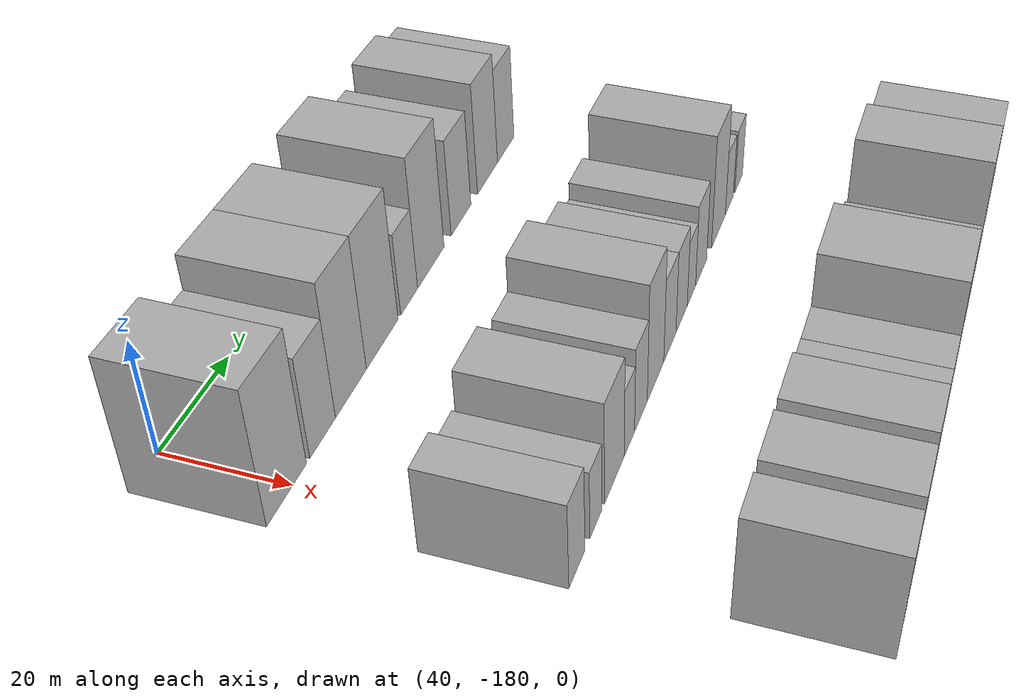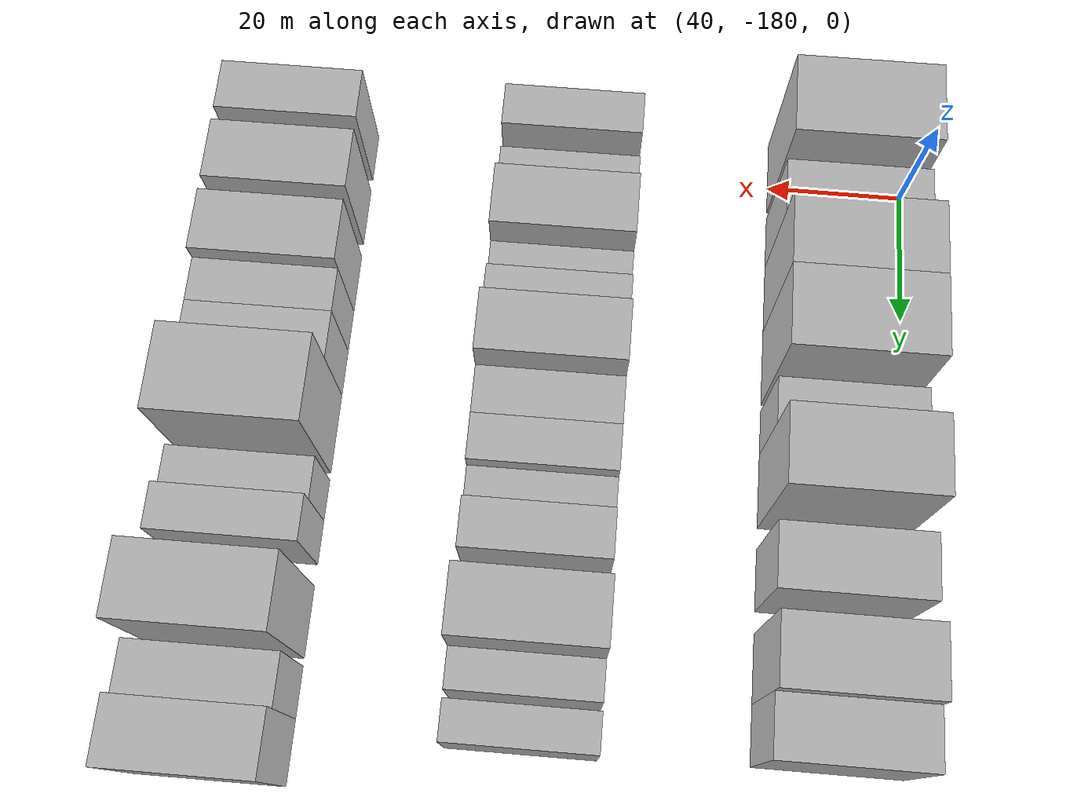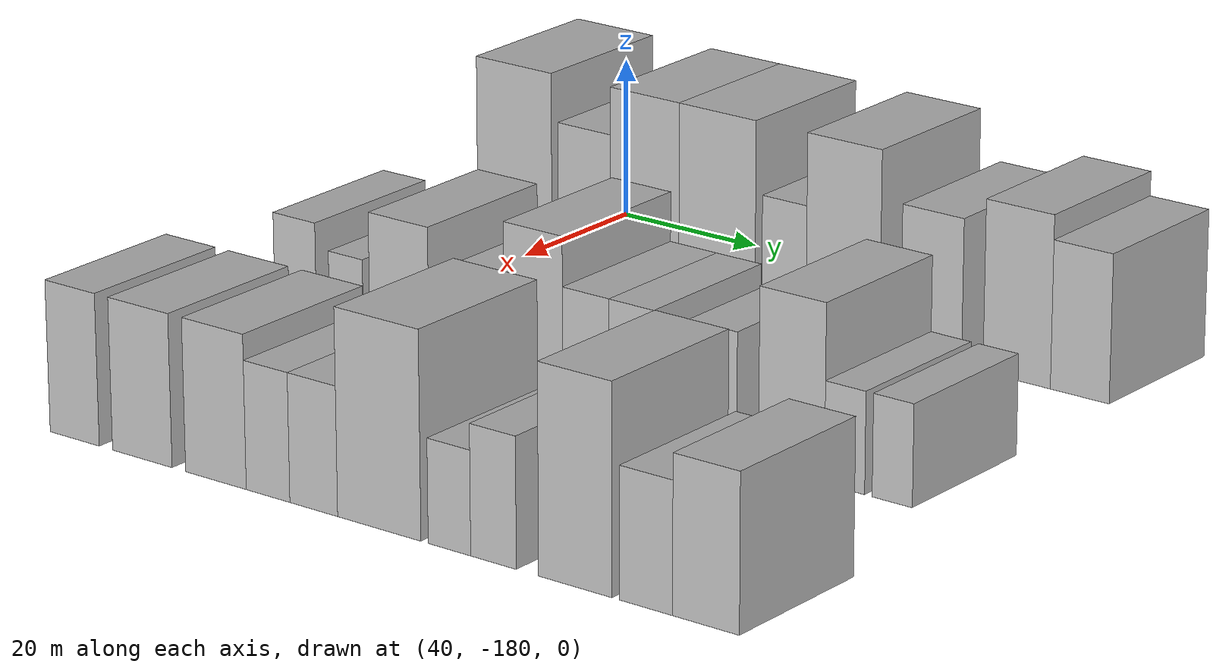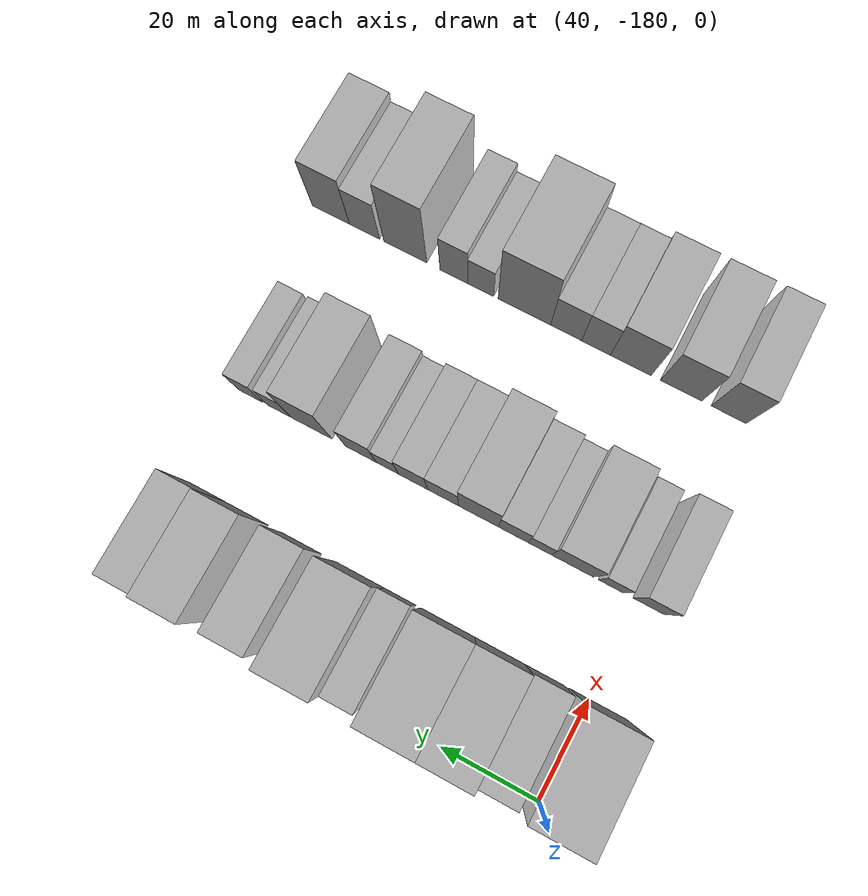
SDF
<sdf version="1.6">
 <world name="default">
  <model name="building_24">
   <static>1</static>
   <pose>50.0000 -181.7386 0 0.000000 0.000000 0.000000</pose>
   <link name="link">
    <pose>0 0 12.00 0 0 0</pose>
    <collision name="collision"><geometry><box><size>20.0000 11.6071 24.0000</size></box></geometry></collision>
    <visual name="visual">
     <cast_shadows>0</cast_shadows>
     <geometry><box><size>20.0000 11.6071 24.0000</size></box></geometry>
     <material>
      <script>
       <uri>model://HANNAS_wall/materials/scripts</uri>
       <uri>model://HANNAS_wall/materials/textures</uri>
       <name>vrc/HANNAS_wall</name>
      </script>
     </material>
    </visual>
   </link>
  </model>
  <model name="building_25">
   <static>1</static>
   <pose>50.0000 -170.9061 0 0.000000 0.000000 0.000000</pose>
   <link name="link">
    <pose>0 0 9.00 0 0 0</pose>
    <collision name="collision"><geometry><box><size>20.0000 8.0578 18.0000</size></box></geometry></collision>
    <visual name="visual">
     <cast_shadows>0</cast_shadows>
     <geometry><box><size>20.0000 8.0578 18.0000</size></box></geometry>
     <material>
      <script>
       <uri>model://HANNAS_wall/materials/scripts</uri>
       <uri>model://HANNAS_wall/materials/textures</uri>
       <name>vrc/HANNAS_wall</name>
      </script>
     </material>
    </visual>
   </link>
  </model>
  <model name="building_26">
   <static>1</static>
   <pose>50.0000 -161.7158 0 0.000000 0.000000 0.000000</pose>
   <link name="link">
    <pose>0 0 12.00 0 0 0</pose>
    <collision name="collision"><geometry><box><size>20.0000 10.3230 24.0000</size></box></geometry></collision>
    <visual name="visual">
     <cast_shadows>0</cast_shadows>
     <geometry><box><size>20.0000 10.3230 24.0000</size></box></geometry>
     <material>
      <script>
       <uri>model://HANNAS_wall/materials/scripts</uri>
       <uri>model://HANNAS_wall/materials/textures</uri>
       <name>vrc/HANNAS_wall</name>
      </script>
     </material>
    </visual>
   </link>
  </model>
  <model name="building_27">
   <static>1</static>
   <pose>50.0000 -150.8850 0 0.000000 0.000000 0.000000</pose>
   <link name="link">
    <pose>0 0 12.00 0 0 0</pose>
    <collision name="collision"><geometry><box><size>20.0000 11.3386 24.0000</size></box></geometry></collision>
    <visual name="visual">
     <cast_shadows>0</cast_shadows>
     <geometry><box><size>20.0000 11.3386 24.0000</size></box></geometry>
     <material>
      <script>
       <uri>model://HANNAS_wall/materials/scripts</uri>
       <uri>model://HANNAS_wall/materials/textures</uri>
       <name>vrc/HANNAS_wall</name>
      </script>
     </material>
    </visual>
   </link>
  </model>
  <model name="building_28">
   <static>1</static>
   <pose>50.0000 -140.9784 0 0.000000 0.000000 0.000000</pose>
   <link name="link">
    <pose>0 0 7.50 0 0 0</pose>
    <collision name="collision"><geometry><box><size>20.0000 6.4745 15.0000</size></box></geometry></collision>
    <visual name="visual">
     <cast_shadows>0</cast_shadows>
     <geometry><box><size>20.0000 6.4745 15.0000</size></box></geometry>
     <material>
      <script>
       <uri>model://HANNAS_wall/materials/scripts</uri>
       <uri>model://HANNAS_wall/materials/textures</uri>
       <name>vrc/HANNAS_wall</name>
      </script>
     </material>
    </visual>
   </link>
  </model>
  <model name="building_29">
   <static>1</static>
   <pose>50.0000 -132.4195 0 0.000000 0.000000 0.000000</pose>
   <link name="link">
    <pose>0 0 12.00 0 0 0</pose>
    <collision name="collision"><geometry><box><size>20.0000 10.6431 24.0000</size></box></geometry></collision>
    <visual name="visual">
     <cast_shadows>0</cast_shadows>
     <geometry><box><size>20.0000 10.6431 24.0000</size></box></geometry>
     <material>
      <script>
       <uri>model://HANNAS_wall/materials/scripts</uri>
       <uri>model://HANNAS_wall/materials/textures</uri>
       <name>vrc/HANNAS_wall</name>
      </script>
     </material>
    </visual>
   </link>
  </model>
  <model name="building_30">
   <static>1</static>
   <pose>50.0000 -119.7952 0 0.000000 0.000000 0.000000</pose>
   <link name="link">
    <pose>0 0 9.00 0 0 0</pose>
    <collision name="collision"><geometry><box><size>20.0000 8.6057 18.0000</size></box></geometry></collision>
    <visual name="visual">
     <cast_shadows>0</cast_shadows>
     <geometry><box><size>20.0000 8.6057 18.0000</size></box></geometry>
     <material>
      <script>
       <uri>model://HANNAS_wall/materials/scripts</uri>
       <uri>model://HANNAS_wall/materials/textures</uri>
       <name>vrc/HANNAS_wall</name>
      </script>
     </material>
    </visual>
   </link>
  </model>
  <model name="building_31">
   <static>1</static>
   <pose>50.0000 -107.8266 0 0.000000 0.000000 0.000000</pose>
   <link name="link">
    <pose>0 0 10.50 0 0 0</pose>
    <collision name="collision"><geometry><box><size>20.0000 9.3315 21.0000</size></box></geometry></collision>
    <visual name="visual">
     <cast_shadows>0</cast_shadows>
     <geometry><box><size>20.0000 9.3315 21.0000</size></box></geometry>
     <material>
      <script>
       <uri>model://HANNAS_wall/materials/scripts</uri>
       <uri>model://HANNAS_wall/materials/textures</uri>
       <name>vrc/HANNAS_wall</name>
      </script>
     </material>
    </visual>
   </link>
  </model>
  <model name="building_32">
   <static>1</static>
   <pose>50.0000 -99.1483 0 0.000000 0.000000 0.000000</pose>
   <link name="link">
    <pose>0 0 9.00 0 0 0</pose>
    <collision name="collision"><geometry><box><size>20.0000 8.0252 18.0000</size></box></geometry></collision>
    <visual name="visual">
     <cast_shadows>0</cast_shadows>
     <geometry><box><size>20.0000 8.0252 18.0000</size></box></geometry>
     <material>
      <script>
       <uri>model://HANNAS_wall/materials/scripts</uri>
       <uri>model://HANNAS_wall/materials/textures</uri>
       <name>vrc/HANNAS_wall</name>
      </script>
     </material>
    </visual>
   </link>
  </model>
  <model name="building_114">
   <static>1</static>
   <pose>90.0000 -182.3572 0 0.000000 0.000000 0.000000</pose>
   <link name="link">
    <pose>0 0 7.50 0 0 0</pose>
    <collision name="collision"><geometry><box><size>20.0000 6.4080 15.0000</size></box></geometry></collision>
    <visual name="visual">
     <cast_shadows>0</cast_shadows>
     <geometry><box><size>20.0000 6.4080 15.0000</size></box></geometry>
     <material>
      <script>
       <uri>model://HANNAS_wall/materials/scripts</uri>
       <uri>model://HANNAS_wall/materials/textures</uri>
       <name>vrc/HANNAS_wall</name>
      </script>
     </material>
    </visual>
   </link>
  </model>
  <model name="building_115">
   <static>1</static>
   <pose>90.0000 -174.5740 0 0.000000 0.000000 0.000000</pose>
   <link name="link">
    <pose>0 0 6.00 0 0 0</pose>
    <collision name="collision"><geometry><box><size>20.0000 5.1584 12.0000</size></box></geometry></collision>
    <visual name="visual">
     <cast_shadows>0</cast_shadows>
     <geometry><box><size>20.0000 5.1584 12.0000</size></box></geometry>
     <material>
      <script>
       <uri>model://HANNAS_wall/materials/scripts</uri>
       <uri>model://HANNAS_wall/materials/textures</uri>
       <name>vrc/HANNAS_wall</name>
      </script>
     </material>
    </visual>
   </link>
  </model>
  <model name="building_116">
   <static>1</static>
   <pose>90.0000 -166.5674 0 0.000000 0.000000 0.000000</pose>
   <link name="link">
    <pose>0 0 9.00 0 0 0</pose>
    <collision name="collision"><geometry><box><size>20.0000 8.8548 18.0000</size></box></geometry></collision>
    <visual name="visual">
     <cast_shadows>0</cast_shadows>
     <geometry><box><size>20.0000 8.8548 18.0000</size></box></geometry>
     <material>
      <script>
       <uri>model://HANNAS_wall/materials/scripts</uri>
       <uri>model://HANNAS_wall/materials/textures</uri>
       <name>vrc/HANNAS_wall</name>
      </script>
     </material>
    </visual>
   </link>
  </model>
  <model name="building_117">
   <static>1</static>
   <pose>90.0000 -159.6843 0 0.000000 0.000000 0.000000</pose>
   <link name="link">
    <pose>0 0 6.00 0 0 0</pose>
    <collision name="collision"><geometry><box><size>20.0000 4.9114 12.0000</size></box></geometry></collision>
    <visual name="visual">
     <cast_shadows>0</cast_shadows>
     <geometry><box><size>20.0000 4.9114 12.0000</size></box></geometry>
     <material>
      <script>
       <uri>model://HANNAS_wall/materials/scripts</uri>
       <uri>model://HANNAS_wall/materials/textures</uri>
       <name>vrc/HANNAS_wall</name>
      </script>
     </material>
    </visual>
   </link>
  </model>
  <model name="building_118">
   <static>1</static>
   <pose>90.0000 -154.1243 0 0.000000 0.000000 0.000000</pose>
   <link name="link">
    <pose>0 0 7.50 0 0 0</pose>
    <collision name="collision"><geometry><box><size>20.0000 6.2087 15.0000</size></box></geometry></collision>
    <visual name="visual">
     <cast_shadows>0</cast_shadows>
     <geometry><box><size>20.0000 6.2087 15.0000</size></box></geometry>
     <material>
      <script>
       <uri>model://HANNAS_wall/materials/scripts</uri>
       <uri>model://HANNAS_wall/materials/textures</uri>
       <name>vrc/HANNAS_wall</name>
      </script>
     </material>
    </visual>
   </link>
  </model>
  <model name="building_119">
   <static>1</static>
   <pose>90.0000 -146.7748 0 0.000000 0.000000 0.000000</pose>
   <link name="link">
    <pose>0 0 10.50 0 0 0</pose>
    <collision name="collision"><geometry><box><size>20.0000 8.4903 21.0000</size></box></geometry></collision>
    <visual name="visual">
     <cast_shadows>0</cast_shadows>
     <geometry><box><size>20.0000 8.4903 21.0000</size></box></geometry>
     <material>
      <script>
       <uri>model://HANNAS_wall/materials/scripts</uri>
       <uri>model://HANNAS_wall/materials/textures</uri>
       <name>vrc/HANNAS_wall</name>
      </script>
     </material>
    </visual>
   </link>
  </model>
  <model name="building_120">
   <static>1</static>
   <pose>90.0000 -139.2105 0 0.000000 0.000000 0.000000</pose>
   <link name="link">
    <pose>0 0 7.50 0 0 0</pose>
    <collision name="collision"><geometry><box><size>20.0000 6.6384 15.0000</size></box></geometry></collision>
    <visual name="visual">
     <cast_shadows>0</cast_shadows>
     <geometry><box><size>20.0000 6.6384 15.0000</size></box></geometry>
     <material>
      <script>
       <uri>model://HANNAS_wall/materials/scripts</uri>
       <uri>model://HANNAS_wall/materials/textures</uri>
       <name>vrc/HANNAS_wall</name>
      </script>
     </material>
    </visual>
   </link>
  </model>
  <model name="building_121">
   <static>1</static>
   <pose>90.0000 -132.7266 0 0.000000 0.000000 0.000000</pose>
   <link name="link">
    <pose>0 0 7.50 0 0 0</pose>
    <collision name="collision"><geometry><box><size>20.0000 6.3294 15.0000</size></box></geometry></collision>
    <visual name="visual">
     <cast_shadows>0</cast_shadows>
     <geometry><box><size>20.0000 6.3294 15.0000</size></box></geometry>
     <material>
      <script>
       <uri>model://HANNAS_wall/materials/scripts</uri>
       <uri>model://HANNAS_wall/materials/textures</uri>
       <name>vrc/HANNAS_wall</name>
      </script>
     </material>
    </visual>
   </link>
  </model>
  <model name="building_122">
   <static>1</static>
   <pose>90.0000 -127.1419 0 0.000000 0.000000 0.000000</pose>
   <link name="link">
    <pose>0 0 6.00 0 0 0</pose>
    <collision name="collision"><geometry><box><size>20.0000 4.8399 12.0000</size></box></geometry></collision>
    <visual name="visual">
     <cast_shadows>0</cast_shadows>
     <geometry><box><size>20.0000 4.8399 12.0000</size></box></geometry>
     <material>
      <script>
       <uri>model://HANNAS_wall/materials/scripts</uri>
       <uri>model://HANNAS_wall/materials/textures</uri>
       <name>vrc/HANNAS_wall</name>
      </script>
     </material>
    </visual>
   </link>
  </model>
  <model name="building_123">
   <static>1</static>
   <pose>90.0000 -121.3613 0 0.000000 0.000000 0.000000</pose>
   <link name="link">
    <pose>0 0 7.50 0 0 0</pose>
    <collision name="collision"><geometry><box><size>20.0000 6.7214 15.0000</size></box></geometry></collision>
    <visual name="visual">
     <cast_shadows>0</cast_shadows>
     <geometry><box><size>20.0000 6.7214 15.0000</size></box></geometry>
     <material>
      <script>
       <uri>model://HANNAS_wall/materials/scripts</uri>
       <uri>model://HANNAS_wall/materials/textures</uri>
       <name>vrc/HANNAS_wall</name>
      </script>
     </material>
    </visual>
   </link>
  </model>
  <model name="building_124">
   <static>1</static>
   <pose>90.0000 -110.5123 0 0.000000 0.000000 0.000000</pose>
   <link name="link">
    <pose>0 0 10.50 0 0 0</pose>
    <collision name="collision"><geometry><box><size>20.0000 8.9765 21.0000</size></box></geometry></collision>
    <visual name="visual">
     <cast_shadows>0</cast_shadows>
     <geometry><box><size>20.0000 8.9765 21.0000</size></box></geometry>
     <material>
      <script>
       <uri>model://HANNAS_wall/materials/scripts</uri>
       <uri>model://HANNAS_wall/materials/textures</uri>
       <name>vrc/HANNAS_wall</name>
      </script>
     </material>
    </visual>
   </link>
  </model>
  <model name="building_125">
   <static>1</static>
   <pose>90.0000 -103.3233 0 0.000000 0.000000 0.000000</pose>
   <link name="link">
    <pose>0 0 6.00 0 0 0</pose>
    <collision name="collision"><geometry><box><size>20.0000 5.4015 12.0000</size></box></geometry></collision>
    <visual name="visual">
     <cast_shadows>0</cast_shadows>
     <geometry><box><size>20.0000 5.4015 12.0000</size></box></geometry>
     <material>
      <script>
       <uri>model://HANNAS_wall/materials/scripts</uri>
       <uri>model://HANNAS_wall/materials/textures</uri>
       <name>vrc/HANNAS_wall</name>
      </script>
     </material>
    </visual>
   </link>
  </model>
  <model name="building_126">
   <static>1</static>
   <pose>90.0000 -96.9538 0 0.000000 0.000000 0.000000</pose>
   <link name="link">
    <pose>0 0 6.00 0 0 0</pose>
    <collision name="collision"><geometry><box><size>20.0000 5.3375 12.0000</size></box></geometry></collision>
    <visual name="visual">
     <cast_shadows>0</cast_shadows>
     <geometry><box><size>20.0000 5.3375 12.0000</size></box></geometry>
     <material>
      <script>
       <uri>model://HANNAS_wall/materials/scripts</uri>
       <uri>model://HANNAS_wall/materials/textures</uri>
       <name>vrc/HANNAS_wall</name>
      </script>
     </material>
    </visual>
   </link>
  </model>
  <model name="building_205">
   <static>1</static>
   <pose>130.0000 -180.3474 0 0.000000 0.000000 0.000000</pose>
   <link name="link">
    <pose>0 0 9.00 0 0 0</pose>
    <collision name="collision"><geometry><box><size>20.0000 7.4548 18.0000</size></box></geometry></collision>
    <visual name="visual">
     <cast_shadows>0</cast_shadows>
     <geometry><box><size>20.0000 7.4548 18.0000</size></box></geometry>
     <material>
      <script>
       <uri>model://HANNAS_wall/materials/scripts</uri>
       <uri>model://HANNAS_wall/materials/textures</uri>
       <name>vrc/HANNAS_wall</name>
      </script>
     </material>
    </visual>
   </link>
  </model>
  <model name="building_206">
   <static>1</static>
   <pose>130.0000 -170.1773 0 0.000000 0.000000 0.000000</pose>
   <link name="link">
    <pose>0 0 9.00 0 0 0</pose>
    <collision name="collision"><geometry><box><size>20.0000 8.8854 18.0000</size></box></geometry></collision>
    <visual name="visual">
     <cast_shadows>0</cast_shadows>
     <geometry><box><size>20.0000 8.8854 18.0000</size></box></geometry>
     <material>
      <script>
       <uri>model://HANNAS_wall/materials/scripts</uri>
       <uri>model://HANNAS_wall/materials/textures</uri>
       <name>vrc/HANNAS_wall</name>
      </script>
     </material>
    </visual>
   </link>
  </model>
  <model name="building_207">
   <static>1</static>
   <pose>130.0000 -159.2992 0 0.000000 0.000000 0.000000</pose>
   <link name="link">
    <pose>0 0 9.00 0 0 0</pose>
    <collision name="collision"><geometry><box><size>20.0000 8.8709 18.0000</size></box></geometry></collision>
    <visual name="visual">
     <cast_shadows>0</cast_shadows>
     <geometry><box><size>20.0000 8.8709 18.0000</size></box></geometry>
     <material>
      <script>
       <uri>model://HANNAS_wall/materials/scripts</uri>
       <uri>model://HANNAS_wall/materials/textures</uri>
       <name>vrc/HANNAS_wall</name>
      </script>
     </material>
    </visual>
   </link>
  </model>
  <model name="building_208">
   <static>1</static>
   <pose>130.0000 -151.7180 0 0.000000 0.000000 0.000000</pose>
   <link name="link">
    <pose>0 0 7.50 0 0 0</pose>
    <collision name="collision"><geometry><box><size>20.0000 6.2914 15.0000</size></box></geometry></collision>
    <visual name="visual">
     <cast_shadows>0</cast_shadows>
     <geometry><box><size>20.0000 6.2914 15.0000</size></box></geometry>
     <material>
      <script>
       <uri>model://HANNAS_wall/materials/scripts</uri>
       <uri>model://HANNAS_wall/materials/textures</uri>
       <name>vrc/HANNAS_wall</name>
      </script>
     </material>
    </visual>
   </link>
  </model>
  <model name="building_209">
   <static>1</static>
   <pose>130.0000 -145.1689 0 0.000000 0.000000 0.000000</pose>
   <link name="link">
    <pose>0 0 7.50 0 0 0</pose>
    <collision name="collision"><geometry><box><size>20.0000 6.8070 15.0000</size></box></geometry></collision>
    <visual name="visual">
     <cast_shadows>0</cast_shadows>
     <geometry><box><size>20.0000 6.8070 15.0000</size></box></geometry>
     <material>
      <script>
       <uri>model://HANNAS_wall/materials/scripts</uri>
       <uri>model://HANNAS_wall/materials/textures</uri>
       <name>vrc/HANNAS_wall</name>
      </script>
     </material>
    </visual>
   </link>
  </model>
  <model name="building_210">
   <static>1</static>
   <pose>130.0000 -135.9297 0 0.000000 0.000000 0.000000</pose>
   <link name="link">
    <pose>0 0 12.00 0 0 0</pose>
    <collision name="collision"><geometry><box><size>20.0000 11.6714 24.0000</size></box></geometry></collision>
    <visual name="visual">
     <cast_shadows>0</cast_shadows>
     <geometry><box><size>20.0000 11.6714 24.0000</size></box></geometry>
     <material>
      <script>
       <uri>model://HANNAS_wall/materials/scripts</uri>
       <uri>model://HANNAS_wall/materials/textures</uri>
       <name>vrc/HANNAS_wall</name>
      </script>
     </material>
    </visual>
   </link>
  </model>
  <model name="building_211">
   <static>1</static>
   <pose>130.0000 -126.1724 0 0.000000 0.000000 0.000000</pose>
   <link name="link">
    <pose>0 0 6.00 0 0 0</pose>
    <collision name="collision"><geometry><box><size>20.0000 5.8432 12.0000</size></box></geometry></collision>
    <visual name="visual">
     <cast_shadows>0</cast_shadows>
     <geometry><box><size>20.0000 5.8432 12.0000</size></box></geometry>
     <material>
      <script>
       <uri>model://HANNAS_wall/materials/scripts</uri>
       <uri>model://HANNAS_wall/materials/textures</uri>
       <name>vrc/HANNAS_wall</name>
      </script>
     </material>
    </visual>
   </link>
  </model>
  <model name="building_212">
   <static>1</static>
   <pose>130.0000 -120.1488 0 0.000000 0.000000 0.000000</pose>
   <link name="link">
    <pose>0 0 7.50 0 0 0</pose>
    <collision name="collision"><geometry><box><size>20.0000 6.2041 15.0000</size></box></geometry></collision>
    <visual name="visual">
     <cast_shadows>0</cast_shadows>
     <geometry><box><size>20.0000 6.2041 15.0000</size></box></geometry>
     <material>
      <script>
       <uri>model://HANNAS_wall/materials/scripts</uri>
       <uri>model://HANNAS_wall/materials/textures</uri>
       <name>vrc/HANNAS_wall</name>
      </script>
     </material>
    </visual>
   </link>
  </model>
  <model name="building_213">
   <static>1</static>
   <pose>130.0000 -109.1566 0 0.000000 0.000000 0.000000</pose>
   <link name="link">
    <pose>0 0 12.00 0 0 0</pose>
    <collision name="collision"><geometry><box><size>20.0000 9.7802 24.0000</size></box></geometry></collision>
    <visual name="visual">
     <cast_shadows>0</cast_shadows>
     <geometry><box><size>20.0000 9.7802 24.0000</size></box></geometry>
     <material>
      <script>
       <uri>model://HANNAS_wall/materials/scripts</uri>
       <uri>model://HANNAS_wall/materials/textures</uri>
       <name>vrc/HANNAS_wall</name>
      </script>
     </material>
    </visual>
   </link>
  </model>
  <model name="building_214">
   <static>1</static>
   <pose>130.0000 -99.8060 0 0.000000 0.000000 0.000000</pose>
   <link name="link">
    <pose>0 0 7.50 0 0 0</pose>
    <collision name="collision"><geometry><box><size>20.0000 6.9210 15.0000</size></box></geometry></collision>
    <visual name="visual">
     <cast_shadows>0</cast_shadows>
     <geometry><box><size>20.0000 6.9210 15.0000</size></box></geometry>
     <material>
      <script>
       <uri>model://HANNAS_wall/materials/scripts</uri>
       <uri>model://HANNAS_wall/materials/textures</uri>
       <name>vrc/HANNAS_wall</name>
      </script>
     </material>
    </visual>
   </link>
  </model>
  <model name="building_215">
   <static>1</static>
   <pose>130.0000 -92.0443 0 0.000000 0.000000 0.000000</pose>
   <link name="link">
    <pose>0 0 9.00 0 0 0</pose>
    <collision name="collision"><geometry><box><size>20.0000 8.6024 18.0000</size></box></geometry></collision>
    <visual name="visual">
     <cast_shadows>0</cast_shadows>
     <geometry><box><size>20.0000 8.6024 18.0000</size></box></geometry>
     <material>
      <script>
       <uri>model://HANNAS_wall/materials/scripts</uri>
       <uri>model://HANNAS_wall/materials/textures</uri>
       <name>vrc/HANNAS_wall</name>
      </script>
     </material>
    </visual>
   </link>
  </model>
 </world>
</sdf>
